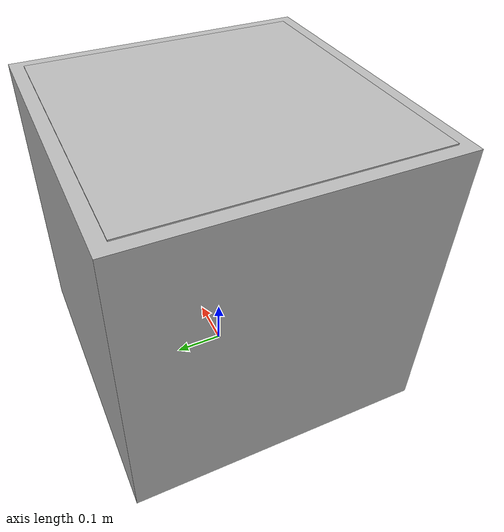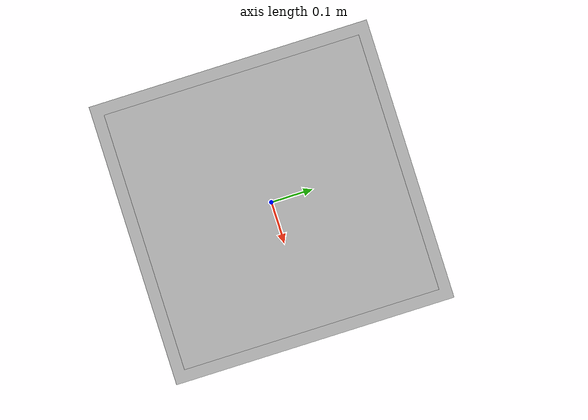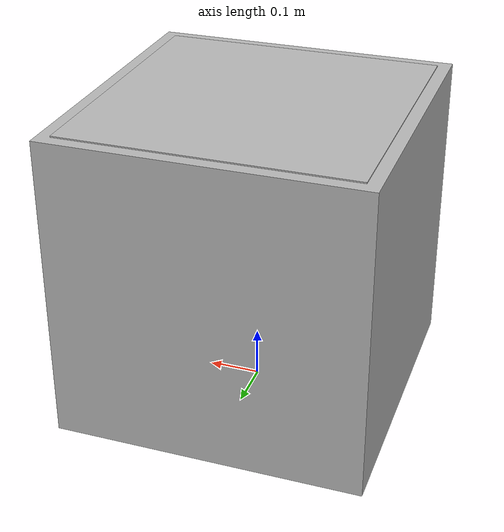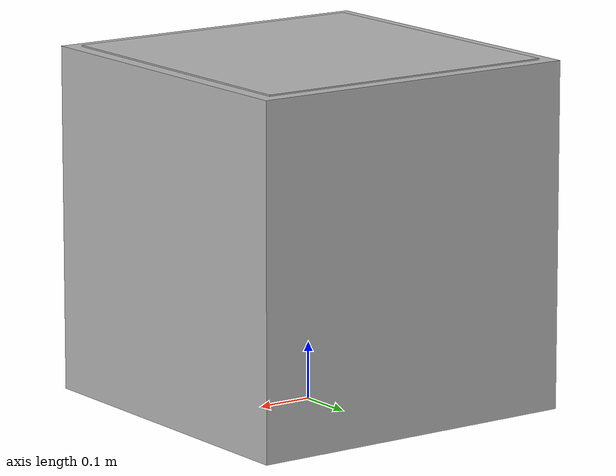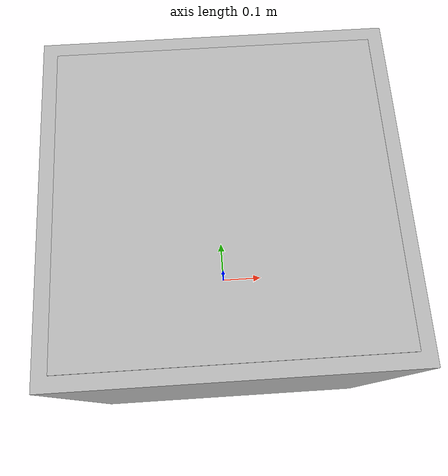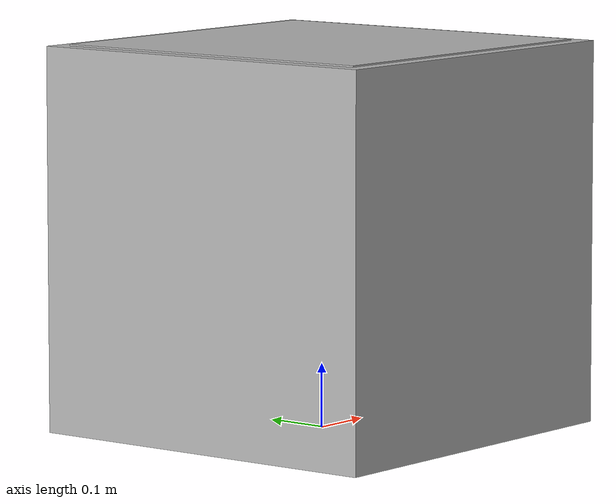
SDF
<?xml version="1.0" ?>
<sdf version="1.5">
  <model name="recharging_base">
    <pose>0 0 0.3 0 0 0</pose>
    <static>true</static>
    <link name="link">
      <inertial>
        <mass>40.0</mass>
        <inertia>
          <ixx>1</ixx>
          <ixy>0</ixy>
          <ixz>0</ixz>
          <iyy>1</iyy>
          <iyz>0</iyz>
          <izz>1</izz>
        </inertia>
      </inertial>

      <collision name="collision">
        <geometry>
          <box>
              <size>0.60 0.60 0.60</size>
          </box>
        </geometry>
	      <surface>
          <contact>
            <ode>
              <max_vel>0.1</max_vel>
              <min_depth>0.001</min_depth>
            </ode>
          </contact>
        </surface>
      </collision>
      <visual name="visual">
        <geometry>
          <box>
              <size>0.60 0.60 0.60</size>
          </box>
        </geometry>
        <material>
          <script>
            <uri>file://media/materials/scripts/gazebo.material</uri>
            <name>Gazebo/Lanes_2</name>
          </script>
        </material>
      </visual>
      <visual name="visual_H">
      <pose>0 0 0.3 0 0 0</pose>
        <geometry>
          <box>
            <size>0.55 0.55 0.005</size>
          </box>
        </geometry>
        <material>
          <script>
            <uri>model://recharging_base/materials/scripts</uri>
            <uri>model://recharging_base/materials/textures</uri>
            <name>Base/H</name>
          </script>
        </material>
      </visual>
    </link>
  </model>
</sdf>
